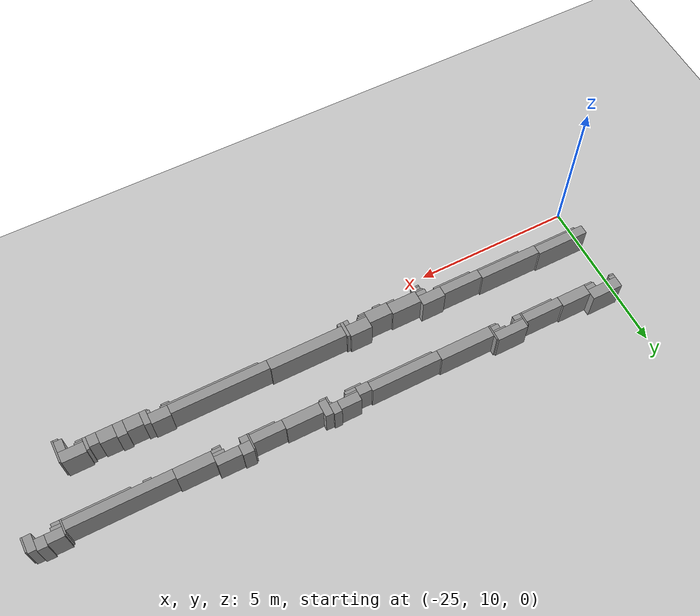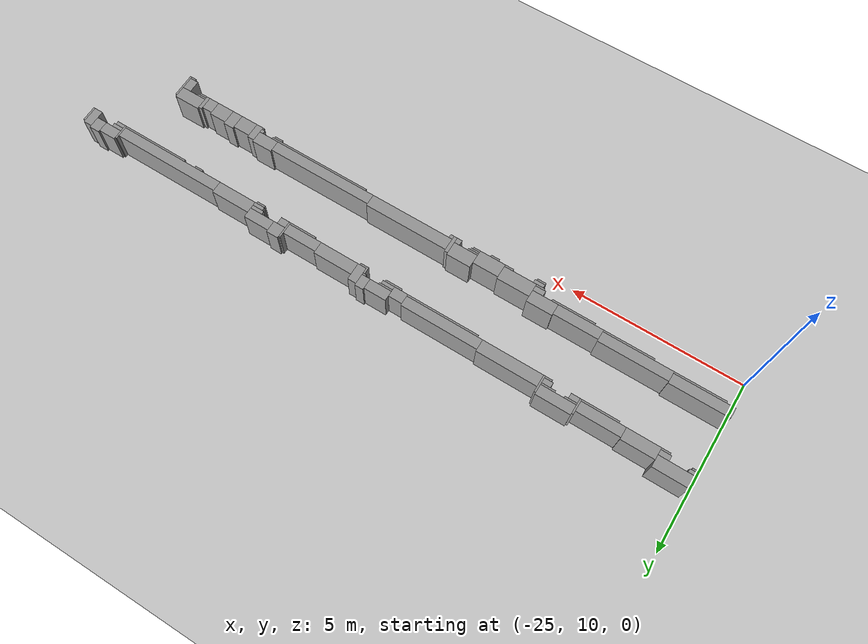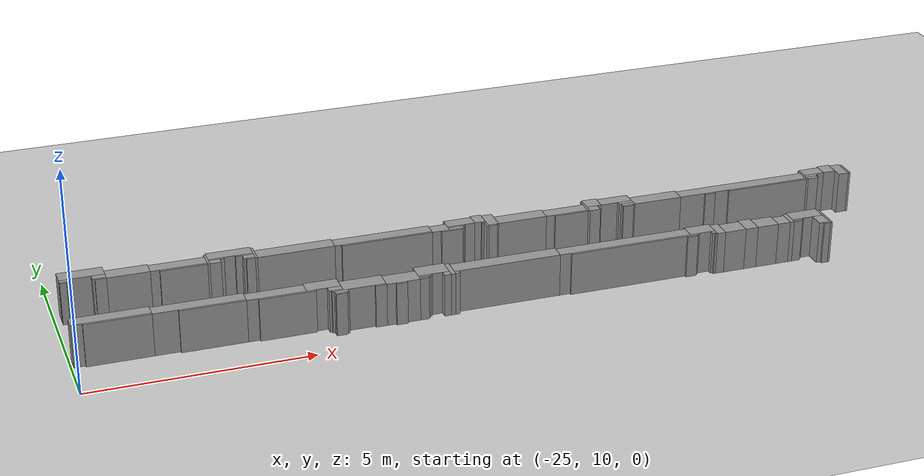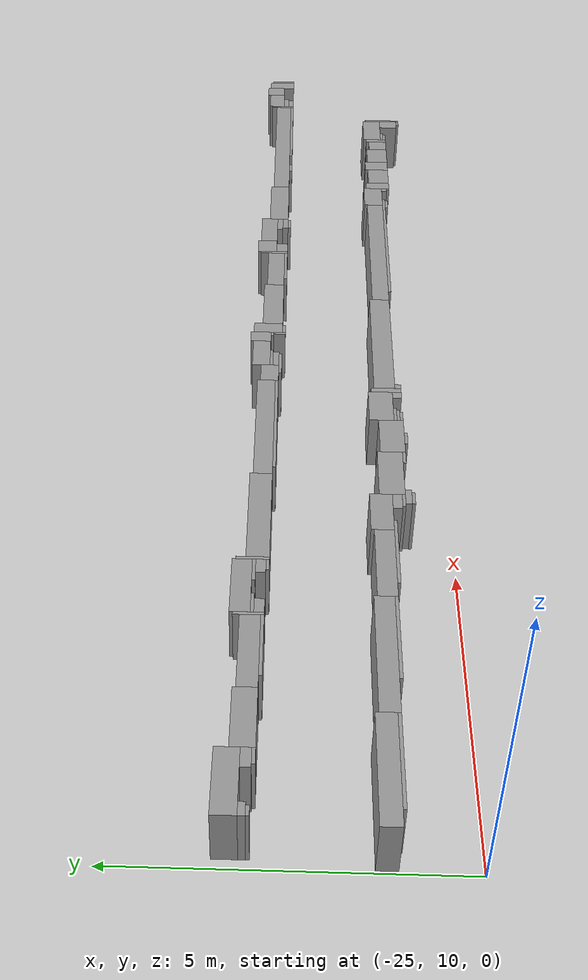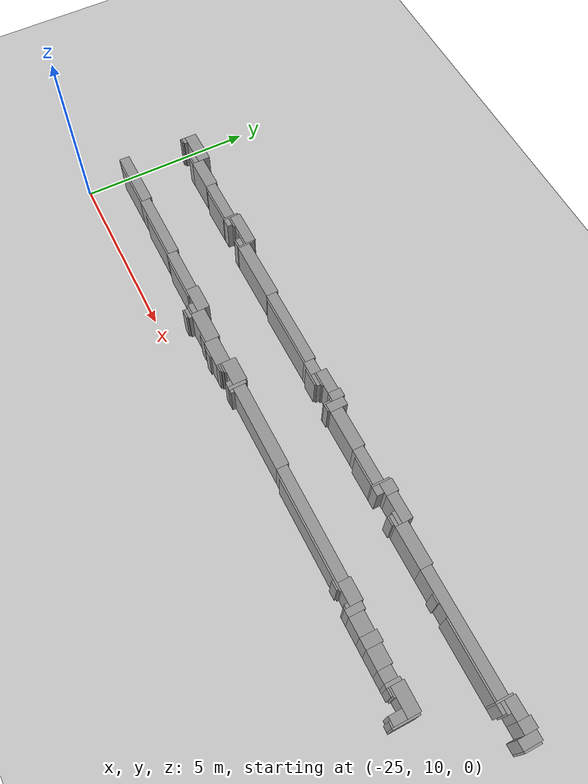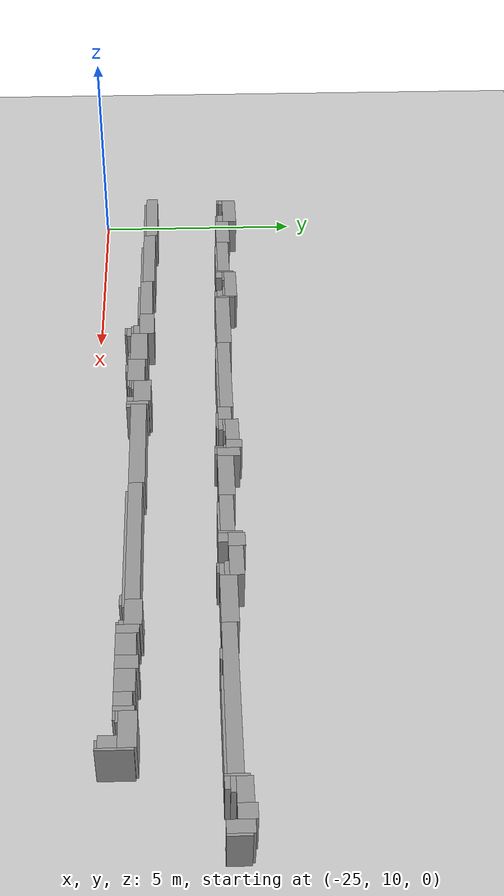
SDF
<sdf version="1.6">
 <world name="default">
  <include><uri>model://ground_plane</uri></include>
  <include><uri>model://sun</uri></include>
  <model name="wall_76">
   <static>1</static>
   <pose>-24.349999999999998 13.325000000000006 0.5 0 0 0</pose>
   <link name="link">
    <collision name="collision">
     <geometry><box><size>1.0 0.35000000000000003 1.0</size></box></geometry>
    </collision>
    <visual name="visual">
     <geometry><box><size>1.0 0.35000000000000003 1.0</size></box></geometry>
     <material>
      <script><uri>file://media/materials/scripts/gazebo.material</uri><name>Gazebo/Grey</name></script>
     </material>
    </visual>
   </link>
  </model>
  <model name="wall_81">
   <static>1</static>
   <pose>-21.099999999999998 13.250000000000004 0.5 0 0 0</pose>
   <link name="link">
    <collision name="collision">
     <geometry><box><size>1.0 0.30000000000000004 1.0</size></box></geometry>
    </collision>
    <visual name="visual">
     <geometry><box><size>1.0 0.30000000000000004 1.0</size></box></geometry>
     <material>
      <script><uri>file://media/materials/scripts/gazebo.material</uri><name>Gazebo/Grey</name></script>
     </material>
    </visual>
   </link>
  </model>
  <model name="wall_87">
   <static>1</static>
   <pose>-21.624999999999996 13.125000000000004 0.5 0 0 0</pose>
   <link name="link">
    <collision name="collision"><geometry><box><size>0.05 0.45 1.0</size></box></geometry></collision>
    <visual name="visual">
     <geometry><box><size>0.05 0.45 1.0</size></box></geometry>
     <material>
      <script><uri>file://media/materials/scripts/gazebo.material</uri><name>Gazebo/Grey</name></script>
     </material>
    </visual>
   </link>
  </model>
  <model name="wall_88">
   <static>1</static>
   <pose>-20.574999999999996 13.100000000000005 0.5 0 0 0</pose>
   <link name="link">
    <collision name="collision"><geometry><box><size>0.05 0.5 1.0</size></box></geometry></collision>
    <visual name="visual">
     <geometry><box><size>0.05 0.5 1.0</size></box></geometry>
     <material>
      <script><uri>file://media/materials/scripts/gazebo.material</uri><name>Gazebo/Grey</name></script>
     </material>
    </visual>
   </link>
  </model>
  <model name="wall_90">
   <static>1</static>
   <pose>-23.374999999999996 13.125000000000004 0.5 0 0 0</pose>
   <link name="link">
    <collision name="collision">
     <geometry><box><size>0.9500000000000001 0.35000000000000003 1.0</size></box></geometry>
    </collision>
    <visual name="visual">
     <geometry><box><size>0.9500000000000001 0.35000000000000003 1.0</size></box></geometry>
     <material>
      <script><uri>file://media/materials/scripts/gazebo.material</uri><name>Gazebo/Grey</name></script>
     </material>
    </visual>
   </link>
  </model>
  <model name="wall_91">
   <static>1</static>
   <pose>-15.374999999999996 13.125000000000004 0.5 0 0 0</pose>
   <link name="link">
    <collision name="collision">
     <geometry><box><size>0.25 0.35000000000000003 1.0</size></box></geometry>
    </collision>
    <visual name="visual">
     <geometry><box><size>0.25 0.35000000000000003 1.0</size></box></geometry>
     <material>
      <script><uri>file://media/materials/scripts/gazebo.material</uri><name>Gazebo/Grey</name></script>
     </material>
    </visual>
   </link>
  </model>
  <model name="wall_93">
   <static>1</static>
   <pose>-22.275 13.100000000000005 0.5 0 0 0</pose>
   <link name="link">
    <collision name="collision">
     <geometry><box><size>1.25 0.30000000000000004 1.0</size></box></geometry>
    </collision>
    <visual name="visual">
     <geometry><box><size>1.25 0.30000000000000004 1.0</size></box></geometry>
     <material>
      <script><uri>file://media/materials/scripts/gazebo.material</uri><name>Gazebo/Grey</name></script>
     </material>
    </visual>
   </link>
  </model>
  <model name="wall_94">
   <static>1</static>
   <pose>-15.824999999999996 13.100000000000005 0.5 0 0 0</pose>
   <link name="link">
    <collision name="collision">
     <geometry><box><size>0.65 0.30000000000000004 1.0</size></box></geometry>
    </collision>
    <visual name="visual">
     <geometry><box><size>0.65 0.30000000000000004 1.0</size></box></geometry>
     <material>
      <script><uri>file://media/materials/scripts/gazebo.material</uri><name>Gazebo/Grey</name></script>
     </material>
    </visual>
   </link>
  </model>
  <model name="wall_95">
   <static>1</static>
   <pose>-15.124999999999996 13.000000000000004 0.5 0 0 0</pose>
   <link name="link">
    <collision name="collision"><geometry><box><size>0.25 0.5 1.0</size></box></geometry></collision>
    <visual name="visual">
     <geometry><box><size>0.25 0.5 1.0</size></box></geometry>
     <material>
      <script><uri>file://media/materials/scripts/gazebo.material</uri><name>Gazebo/Grey</name></script>
     </material>
    </visual>
   </link>
  </model>
  <model name="wall_96">
   <static>1</static>
   <pose>-12.624999999999996 13.075000000000006 0.5 0 0 0</pose>
   <link name="link">
    <collision name="collision">
     <geometry><box><size>0.35000000000000003 0.35000000000000003 1.0</size></box></geometry>
    </collision>
    <visual name="visual">
     <geometry><box><size>0.35000000000000003 0.35000000000000003 1.0</size></box></geometry>
     <material>
      <script><uri>file://media/materials/scripts/gazebo.material</uri><name>Gazebo/Grey</name></script>
     </material>
    </visual>
   </link>
  </model>
  <model name="wall_98">
   <static>1</static>
   <pose>-19.674999999999997 13.025000000000002 0.5 0 0 0</pose>
   <link name="link">
    <collision name="collision">
     <geometry><box><size>1.75 0.35000000000000003 1.0</size></box></geometry>
    </collision>
    <visual name="visual">
     <geometry><box><size>1.75 0.35000000000000003 1.0</size></box></geometry>
     <material>
      <script><uri>file://media/materials/scripts/gazebo.material</uri><name>Gazebo/Grey</name></script>
     </material>
    </visual>
   </link>
  </model>
  <model name="wall_99">
   <static>1</static>
   <pose>-12.824999999999996 12.950000000000006 0.5 0 0 0</pose>
   <link name="link">
    <collision name="collision"><geometry><box><size>0.05 0.5 1.0</size></box></geometry></collision>
    <visual name="visual">
     <geometry><box><size>0.05 0.5 1.0</size></box></geometry>
     <material>
      <script><uri>file://media/materials/scripts/gazebo.material</uri><name>Gazebo/Grey</name></script>
     </material>
    </visual>
   </link>
  </model>
  <model name="wall_100">
   <static>1</static>
   <pose>-12.074999999999996 13.05 0.5 0 0 0</pose>
   <link name="link">
    <collision name="collision">
     <geometry><box><size>0.75 0.30000000000000004 1.0</size></box></geometry>
    </collision>
    <visual name="visual">
     <geometry><box><size>0.75 0.30000000000000004 1.0</size></box></geometry>
     <material>
      <script><uri>file://media/materials/scripts/gazebo.material</uri><name>Gazebo/Grey</name></script>
     </material>
    </visual>
   </link>
  </model>
  <model name="wall_101">
   <static>1</static>
   <pose>-6.649999999999999 13.025000000000002 0.5 0 0 0</pose>
   <link name="link">
    <collision name="collision">
     <geometry><box><size>0.30000000000000004 0.35000000000000003 1.0</size></box></geometry>
    </collision>
    <visual name="visual">
     <geometry><box><size>0.30000000000000004 0.35000000000000003 1.0</size></box></geometry>
     <material>
      <script><uri>file://media/materials/scripts/gazebo.material</uri><name>Gazebo/Grey</name></script>
     </material>
    </visual>
   </link>
  </model>
  <model name="wall_103">
   <static>1</static>
   <pose>-24.749999999999996 13.100000000000005 0.5 0 0 0</pose>
   <link name="link">
    <collision name="collision"><geometry><box><size>0.2 0.1 1.0</size></box></geometry></collision>
    <visual name="visual">
     <geometry><box><size>0.2 0.1 1.0</size></box></geometry>
     <material>
      <script><uri>file://media/materials/scripts/gazebo.material</uri><name>Gazebo/Grey</name></script>
     </material>
    </visual>
   </link>
  </model>
  <model name="wall_104">
   <static>1</static>
   <pose>-23.999999999999996 13.075000000000006 0.5 0 0 0</pose>
   <link name="link">
    <collision name="collision">
     <geometry><box><size>0.30000000000000004 0.15000000000000002 1.0</size></box></geometry>
    </collision>
    <visual name="visual">
     <geometry><box><size>0.30000000000000004 0.15000000000000002 1.0</size></box></geometry>
     <material>
      <script><uri>file://media/materials/scripts/gazebo.material</uri><name>Gazebo/Grey</name></script>
     </material>
    </visual>
   </link>
  </model>
  <model name="wall_105">
   <static>1</static>
   <pose>-17.674999999999997 13.000000000000004 0.5 0 0 0</pose>
   <link name="link">
    <collision name="collision">
     <geometry><box><size>2.25 0.30000000000000004 1.0</size></box></geometry>
    </collision>
    <visual name="visual">
     <geometry><box><size>2.25 0.30000000000000004 1.0</size></box></geometry>
     <material>
      <script><uri>file://media/materials/scripts/gazebo.material</uri><name>Gazebo/Grey</name></script>
     </material>
    </visual>
   </link>
  </model>
  <model name="wall_106">
   <static>1</static>
   <pose>-7.049999999999997 13.000000000000004 0.5 0 0 0</pose>
   <link name="link">
    <collision name="collision">
     <geometry><box><size>0.5 0.30000000000000004 1.0</size></box></geometry>
    </collision>
    <visual name="visual">
     <geometry><box><size>0.5 0.30000000000000004 1.0</size></box></geometry>
     <material>
      <script><uri>file://media/materials/scripts/gazebo.material</uri><name>Gazebo/Grey</name></script>
     </material>
    </visual>
   </link>
  </model>
  <model name="wall_107">
   <static>1</static>
   <pose>-6.375 12.900000000000002 0.5 0 0 0</pose>
   <link name="link">
    <collision name="collision"><geometry><box><size>0.25 0.5 1.0</size></box></geometry></collision>
    <visual name="visual">
     <geometry><box><size>0.25 0.5 1.0</size></box></geometry>
     <material>
      <script><uri>file://media/materials/scripts/gazebo.material</uri><name>Gazebo/Grey</name></script>
     </material>
    </visual>
   </link>
  </model>
  <model name="wall_110">
   <static>1</static>
   <pose>-21.424999999999997 13.075000000000006 0.5 0 0 0</pose>
   <link name="link">
    <collision name="collision">
     <geometry><box><size>0.35000000000000003 0.05 1.0</size></box></geometry>
    </collision>
    <visual name="visual">
     <geometry><box><size>0.35000000000000003 0.05 1.0</size></box></geometry>
     <material>
      <script><uri>file://media/materials/scripts/gazebo.material</uri><name>Gazebo/Grey</name></script>
     </material>
    </visual>
   </link>
  </model>
  <model name="wall_111">
   <static>1</static>
   <pose>-20.799999999999997 13.075000000000006 0.5 0 0 0</pose>
   <link name="link">
    <collision name="collision"><geometry><box><size>0.4 0.05 1.0</size></box></geometry></collision>
    <visual name="visual">
     <geometry><box><size>0.4 0.05 1.0</size></box></geometry>
     <material>
      <script><uri>file://media/materials/scripts/gazebo.material</uri><name>Gazebo/Grey</name></script>
     </material>
    </visual>
   </link>
  </model>
  <model name="wall_112">
   <static>1</static>
   <pose>-16.349999999999998 12.950000000000006 0.5 0 0 0</pose>
   <link name="link">
    <collision name="collision">
     <geometry><box><size>0.4 0.30000000000000004 1.0</size></box></geometry>
    </collision>
    <visual name="visual">
     <geometry><box><size>0.4 0.30000000000000004 1.0</size></box></geometry>
     <material>
      <script><uri>file://media/materials/scripts/gazebo.material</uri><name>Gazebo/Grey</name></script>
     </material>
    </visual>
   </link>
  </model>
  <model name="wall_113">
   <static>1</static>
   <pose>-14.424999999999997 12.925 0.5 0 0 0</pose>
   <link name="link">
    <collision name="collision">
     <geometry><box><size>1.1500000000000001 0.35000000000000003 1.0</size></box></geometry>
    </collision>
    <visual name="visual">
     <geometry><box><size>1.1500000000000001 0.35000000000000003 1.0</size></box></geometry>
     <material>
      <script><uri>file://media/materials/scripts/gazebo.material</uri><name>Gazebo/Grey</name></script>
     </material>
    </visual>
   </link>
  </model>
  <model name="wall_114">
   <static>1</static>
   <pose>-7.324999999999996 12.875000000000004 0.5 0 0 0</pose>
   <link name="link">
    <collision name="collision"><geometry><box><size>0.05 0.45 1.0</size></box></geometry></collision>
    <visual name="visual">
     <geometry><box><size>0.05 0.45 1.0</size></box></geometry>
     <material>
      <script><uri>file://media/materials/scripts/gazebo.material</uri><name>Gazebo/Grey</name></script>
     </material>
    </visual>
   </link>
  </model>
  <model name="wall_115">
   <static>1</static>
   <pose>-6.224999999999994 12.875000000000004 0.5 0 0 0</pose>
   <link name="link">
    <collision name="collision"><geometry><box><size>0.05 0.45 1.0</size></box></geometry></collision>
    <visual name="visual">
     <geometry><box><size>0.05 0.45 1.0</size></box></geometry>
     <material>
      <script><uri>file://media/materials/scripts/gazebo.material</uri><name>Gazebo/Grey</name></script>
     </material>
    </visual>
   </link>
  </model>
  <model name="wall_117">
   <static>1</static>
   <pose>-24.775 13.025000000000002 0.5 0 0 0</pose>
   <link name="link">
    <collision name="collision">
     <geometry><box><size>0.15000000000000002 0.05 1.0</size></box></geometry>
    </collision>
    <visual name="visual">
     <geometry><box><size>0.15000000000000002 0.05 1.0</size></box></geometry>
     <material>
      <script><uri>file://media/materials/scripts/gazebo.material</uri><name>Gazebo/Grey</name></script>
     </material>
    </visual>
   </link>
  </model>
  <model name="wall_118">
   <static>1</static>
   <pose>-21.474999999999998 12.975000000000005 0.5 0 0 0</pose>
   <link name="link">
    <collision name="collision">
     <geometry><box><size>0.25 0.15000000000000002 1.0</size></box></geometry>
    </collision>
    <visual name="visual">
     <geometry><box><size>0.25 0.15000000000000002 1.0</size></box></geometry>
     <material>
      <script><uri>file://media/materials/scripts/gazebo.material</uri><name>Gazebo/Grey</name></script>
     </material>
    </visual>
   </link>
  </model>
  <model name="wall_119">
   <static>1</static>
   <pose>-20.724999999999998 12.975000000000005 0.5 0 0 0</pose>
   <link name="link">
    <collision name="collision">
     <geometry><box><size>0.25 0.15000000000000002 1.0</size></box></geometry>
    </collision>
    <visual name="visual">
     <geometry><box><size>0.25 0.15000000000000002 1.0</size></box></geometry>
     <material>
      <script><uri>file://media/materials/scripts/gazebo.material</uri><name>Gazebo/Grey</name></script>
     </material>
    </visual>
   </link>
  </model>
  <model name="wall_120">
   <static>1</static>
   <pose>-13.349999999999998 12.900000000000002 0.5 0 0 0</pose>
   <link name="link">
    <collision name="collision">
     <geometry><box><size>1.0 0.30000000000000004 1.0</size></box></geometry>
    </collision>
    <visual name="visual">
     <geometry><box><size>1.0 0.30000000000000004 1.0</size></box></geometry>
     <material>
      <script><uri>file://media/materials/scripts/gazebo.material</uri><name>Gazebo/Grey</name></script>
     </material>
    </visual>
   </link>
  </model>
  <model name="wall_121">
   <static>1</static>
   <pose>-11.125 12.875000000000004 0.5 0 0 0</pose>
   <link name="link">
    <collision name="collision">
     <geometry><box><size>1.1500000000000001 0.35000000000000003 1.0</size></box></geometry>
    </collision>
    <visual name="visual">
     <geometry><box><size>1.1500000000000001 0.35000000000000003 1.0</size></box></geometry>
     <material>
      <script><uri>file://media/materials/scripts/gazebo.material</uri><name>Gazebo/Grey</name></script>
     </material>
    </visual>
   </link>
  </model>
  <model name="wall_123">
   <static>1</static>
   <pose>-23.974999999999998 12.975000000000005 0.5 0 0 0</pose>
   <link name="link">
    <collision name="collision"><geometry><box><size>0.25 0.05 1.0</size></box></geometry></collision>
    <visual name="visual">
     <geometry><box><size>0.25 0.05 1.0</size></box></geometry>
     <material>
      <script><uri>file://media/materials/scripts/gazebo.material</uri><name>Gazebo/Grey</name></script>
     </material>
    </visual>
   </link>
  </model>
  <model name="wall_124">
   <static>1</static>
   <pose>-8.949999999999996 12.850000000000005 0.5 0 0 0</pose>
   <link name="link">
    <collision name="collision">
     <geometry><box><size>3.2 0.30000000000000004 1.0</size></box></geometry>
    </collision>
    <visual name="visual">
     <geometry><box><size>3.2 0.30000000000000004 1.0</size></box></geometry>
     <material>
      <script><uri>file://media/materials/scripts/gazebo.material</uri><name>Gazebo/Grey</name></script>
     </material>
    </visual>
   </link>
  </model>
  <model name="wall_126">
   <static>1</static>
   <pose>-22.174999999999997 12.925 0.5 0 0 0</pose>
   <link name="link">
    <collision name="collision"><geometry><box><size>1.05 0.05 1.0</size></box></geometry></collision>
    <visual name="visual">
     <geometry><box><size>1.05 0.05 1.0</size></box></geometry>
     <material>
      <script><uri>file://media/materials/scripts/gazebo.material</uri><name>Gazebo/Grey</name></script>
     </material>
    </visual>
   </link>
  </model>
  <model name="wall_127">
   <static>1</static>
   <pose>-15.949999999999996 12.925 0.5 0 0 0</pose>
   <link name="link">
    <collision name="collision"><geometry><box><size>0.4 0.05 1.0</size></box></geometry></collision>
    <visual name="visual">
     <geometry><box><size>0.4 0.05 1.0</size></box></geometry>
     <material>
      <script><uri>file://media/materials/scripts/gazebo.material</uri><name>Gazebo/Grey</name></script>
     </material>
    </visual>
   </link>
  </model>
  <model name="wall_128">
   <static>1</static>
   <pose>-15.299999999999997 12.925 0.5 0 0 0</pose>
   <link name="link">
    <collision name="collision"><geometry><box><size>0.1 0.05 1.0</size></box></geometry></collision>
    <visual name="visual">
     <geometry><box><size>0.1 0.05 1.0</size></box></geometry>
     <material>
      <script><uri>file://media/materials/scripts/gazebo.material</uri><name>Gazebo/Grey</name></script>
     </material>
    </visual>
   </link>
  </model>
  <model name="wall_129">
   <static>1</static>
   <pose>-20.699999999999996 12.875000000000004 0.5 0 0 0</pose>
   <link name="link">
    <collision name="collision"><geometry><box><size>0.2 0.05 1.0</size></box></geometry></collision>
    <visual name="visual">
     <geometry><box><size>0.2 0.05 1.0</size></box></geometry>
     <material>
      <script><uri>file://media/materials/scripts/gazebo.material</uri><name>Gazebo/Grey</name></script>
     </material>
    </visual>
   </link>
  </model>
  <model name="wall_130">
   <static>1</static>
   <pose>-15.974999999999998 12.850000000000005 0.5 0 0 0</pose>
   <link name="link">
    <collision name="collision">
     <geometry><box><size>0.35000000000000003 0.1 1.0</size></box></geometry>
    </collision>
    <visual name="visual">
     <geometry><box><size>0.35000000000000003 0.1 1.0</size></box></geometry>
     <material>
      <script><uri>file://media/materials/scripts/gazebo.material</uri><name>Gazebo/Grey</name></script>
     </material>
    </visual>
   </link>
  </model>
  <model name="wall_131">
   <static>1</static>
   <pose>-15.274999999999999 12.8 0.5 0 0 0</pose>
   <link name="link">
    <collision name="collision"><geometry><box><size>0.05 0.2 1.0</size></box></geometry></collision>
    <visual name="visual">
     <geometry><box><size>0.05 0.2 1.0</size></box></geometry>
     <material>
      <script><uri>file://media/materials/scripts/gazebo.material</uri><name>Gazebo/Grey</name></script>
     </material>
    </visual>
   </link>
  </model>
  <model name="wall_132">
   <static>1</static>
   <pose>-12.674999999999997 12.8 0.5 0 0 0</pose>
   <link name="link">
    <collision name="collision"><geometry><box><size>0.25 0.2 1.0</size></box></geometry></collision>
    <visual name="visual">
     <geometry><box><size>0.25 0.2 1.0</size></box></geometry>
     <material>
      <script><uri>file://media/materials/scripts/gazebo.material</uri><name>Gazebo/Grey</name></script>
     </material>
    </visual>
   </link>
  </model>
  <model name="wall_133">
   <static>1</static>
   <pose>-11.875 12.850000000000005 0.5 0 0 0</pose>
   <link name="link">
    <collision name="collision">
     <geometry><box><size>0.35000000000000003 0.1 1.0</size></box></geometry>
    </collision>
    <visual name="visual">
     <geometry><box><size>0.35000000000000003 0.1 1.0</size></box></geometry>
     <material>
      <script><uri>file://media/materials/scripts/gazebo.material</uri><name>Gazebo/Grey</name></script>
     </material>
    </visual>
   </link>
  </model>
  <model name="wall_135">
   <static>1</static>
   <pose>-17.599999999999998 12.825000000000006 0.5 0 0 0</pose>
   <link name="link">
    <collision name="collision"><geometry><box><size>2.1 0.05 1.0</size></box></geometry></collision>
    <visual name="visual">
     <geometry><box><size>2.1 0.05 1.0</size></box></geometry>
     <material>
      <script><uri>file://media/materials/scripts/gazebo.material</uri><name>Gazebo/Grey</name></script>
     </material>
    </visual>
   </link>
  </model>
  <model name="wall_136">
   <static>1</static>
   <pose>-7.149999999999999 12.8 0.5 0 0 0</pose>
   <link name="link">
    <collision name="collision">
     <geometry><box><size>0.30000000000000004 0.1 1.0</size></box></geometry>
    </collision>
    <visual name="visual">
     <geometry><box><size>0.30000000000000004 0.1 1.0</size></box></geometry>
     <material>
      <script><uri>file://media/materials/scripts/gazebo.material</uri><name>Gazebo/Grey</name></script>
     </material>
    </visual>
   </link>
  </model>
  <model name="wall_137">
   <static>1</static>
   <pose>-16.099999999999998 12.775000000000002 0.5 0 0 0</pose>
   <link name="link">
    <collision name="collision"><geometry><box><size>0.5 0.05 1.0</size></box></geometry></collision>
    <visual name="visual">
     <geometry><box><size>0.5 0.05 1.0</size></box></geometry>
     <material>
      <script><uri>file://media/materials/scripts/gazebo.material</uri><name>Gazebo/Grey</name></script>
     </material>
    </visual>
   </link>
  </model>
  <model name="wall_138">
   <static>1</static>
   <pose>-11.849999999999994 12.750000000000004 0.5 0 0 0</pose>
   <link name="link">
    <collision name="collision">
     <geometry><box><size>0.30000000000000004 0.1 1.0</size></box></geometry>
    </collision>
    <visual name="visual">
     <geometry><box><size>0.30000000000000004 0.1 1.0</size></box></geometry>
     <material>
      <script><uri>file://media/materials/scripts/gazebo.material</uri><name>Gazebo/Grey</name></script>
     </material>
    </visual>
   </link>
  </model>
  <model name="wall_139">
   <static>1</static>
   <pose>-15.149999999999999 12.725000000000005 0.5 0 0 0</pose>
   <link name="link">
    <collision name="collision"><geometry><box><size>0.2 0.05 1.0</size></box></geometry></collision>
    <visual name="visual">
     <geometry><box><size>0.2 0.05 1.0</size></box></geometry>
     <material>
      <script><uri>file://media/materials/scripts/gazebo.material</uri><name>Gazebo/Grey</name></script>
     </material>
    </visual>
   </link>
  </model>
  <model name="wall_140">
   <static>1</static>
   <pose>-13.249999999999996 12.725000000000005 0.5 0 0 0</pose>
   <link name="link">
    <collision name="collision"><geometry><box><size>0.8 0.05 1.0</size></box></geometry></collision>
    <visual name="visual">
     <geometry><box><size>0.8 0.05 1.0</size></box></geometry>
     <material>
      <script><uri>file://media/materials/scripts/gazebo.material</uri><name>Gazebo/Grey</name></script>
     </material>
    </visual>
   </link>
  </model>
  <model name="wall_141">
   <static>1</static>
   <pose>-7.174999999999997 12.700000000000006 0.5 0 0 0</pose>
   <link name="link">
    <collision name="collision"><geometry><box><size>0.25 0.1 1.0</size></box></geometry></collision>
    <visual name="visual">
     <geometry><box><size>0.25 0.1 1.0</size></box></geometry>
     <material>
      <script><uri>file://media/materials/scripts/gazebo.material</uri><name>Gazebo/Grey</name></script>
     </material>
    </visual>
   </link>
  </model>
  <model name="wall_142">
   <static>1</static>
   <pose>-11.875 12.675 0.5 0 0 0</pose>
   <link name="link">
    <collision name="collision"><geometry><box><size>0.25 0.05 1.0</size></box></geometry></collision>
    <visual name="visual">
     <geometry><box><size>0.25 0.05 1.0</size></box></geometry>
     <material>
      <script><uri>file://media/materials/scripts/gazebo.material</uri><name>Gazebo/Grey</name></script>
     </material>
    </visual>
   </link>
  </model>
  <model name="wall_143">
   <static>1</static>
   <pose>-9.824999999999996 12.675 0.5 0 0 0</pose>
   <link name="link">
    <collision name="collision"><geometry><box><size>0.25 0.05 1.0</size></box></geometry></collision>
    <visual name="visual">
     <geometry><box><size>0.25 0.05 1.0</size></box></geometry>
     <material>
      <script><uri>file://media/materials/scripts/gazebo.material</uri><name>Gazebo/Grey</name></script>
     </material>
    </visual>
   </link>
  </model>
  <model name="wall_144">
   <static>1</static>
   <pose>-8.349999999999994 12.675 0.5 0 0 0</pose>
   <link name="link">
    <collision name="collision"><geometry><box><size>2.0 0.05 1.0</size></box></geometry></collision>
    <visual name="visual">
     <geometry><box><size>2.0 0.05 1.0</size></box></geometry>
     <material>
      <script><uri>file://media/materials/scripts/gazebo.material</uri><name>Gazebo/Grey</name></script>
     </material>
    </visual>
   </link>
  </model>
  <model name="wall_166">
   <static>1</static>
   <pose>-24.099999999999998 11.250000000000004 0.5 0 0 0</pose>
   <link name="link">
    <collision name="collision">
     <geometry><box><size>1.7000000000000002 0.30000000000000004 1.0</size></box></geometry>
    </collision>
    <visual name="visual">
     <geometry><box><size>1.7000000000000002 0.30000000000000004 1.0</size></box></geometry>
     <material>
      <script><uri>file://media/materials/scripts/gazebo.material</uri><name>Gazebo/Grey</name></script>
     </material>
    </visual>
   </link>
  </model>
  <model name="wall_169">
   <static>1</static>
   <pose>-22.249999999999996 11.200000000000006 0.5 0 0 0</pose>
   <link name="link">
    <collision name="collision">
     <geometry><box><size>2.0 0.30000000000000004 1.0</size></box></geometry>
    </collision>
    <visual name="visual">
     <geometry><box><size>2.0 0.30000000000000004 1.0</size></box></geometry>
     <material>
      <script><uri>file://media/materials/scripts/gazebo.material</uri><name>Gazebo/Grey</name></script>
     </material>
    </visual>
   </link>
  </model>
  <model name="wall_170">
   <static>1</static>
   <pose>-19.574999999999996 11.175 0.5 0 0 0</pose>
   <link name="link">
    <collision name="collision">
     <geometry><box><size>0.75 0.35000000000000003 1.0</size></box></geometry>
    </collision>
    <visual name="visual">
     <geometry><box><size>0.75 0.35000000000000003 1.0</size></box></geometry>
     <material>
      <script><uri>file://media/materials/scripts/gazebo.material</uri><name>Gazebo/Grey</name></script>
     </material>
    </visual>
   </link>
  </model>
  <model name="wall_172">
   <static>1</static>
   <pose>-20.599999999999998 11.150000000000002 0.5 0 0 0</pose>
   <link name="link">
    <collision name="collision">
     <geometry><box><size>1.3 0.30000000000000004 1.0</size></box></geometry>
    </collision>
    <visual name="visual">
     <geometry><box><size>1.3 0.30000000000000004 1.0</size></box></geometry>
     <material>
      <script><uri>file://media/materials/scripts/gazebo.material</uri><name>Gazebo/Grey</name></script>
     </material>
    </visual>
   </link>
  </model>
  <model name="wall_173">
   <static>1</static>
   <pose>-17.15 11.100000000000005 0.5 0 0 0</pose>
   <link name="link">
    <collision name="collision">
     <geometry><box><size>0.7000000000000001 0.4 1.0</size></box></geometry>
    </collision>
    <visual name="visual">
     <geometry><box><size>0.7000000000000001 0.4 1.0</size></box></geometry>
     <material>
      <script><uri>file://media/materials/scripts/gazebo.material</uri><name>Gazebo/Grey</name></script>
     </material>
    </visual>
   </link>
  </model>
  <model name="wall_175">
   <static>1</static>
   <pose>-16.749999999999996 11.000000000000004 0.5 0 0 0</pose>
   <link name="link">
    <collision name="collision"><geometry><box><size>0.1 0.5 1.0</size></box></geometry></collision>
    <visual name="visual">
     <geometry><box><size>0.1 0.5 1.0</size></box></geometry>
     <material>
      <script><uri>file://media/materials/scripts/gazebo.material</uri><name>Gazebo/Grey</name></script>
     </material>
    </visual>
   </link>
  </model>
  <model name="wall_176">
   <static>1</static>
   <pose>-18.724999999999998 11.000000000000004 0.5 0 0 0</pose>
   <link name="link">
    <collision name="collision">
     <geometry><box><size>0.9500000000000001 0.4 1.0</size></box></geometry>
    </collision>
    <visual name="visual">
     <geometry><box><size>0.9500000000000001 0.4 1.0</size></box></geometry>
     <material>
      <script><uri>file://media/materials/scripts/gazebo.material</uri><name>Gazebo/Grey</name></script>
     </material>
    </visual>
   </link>
  </model>
  <model name="wall_177">
   <static>1</static>
   <pose>-15.474999999999998 11.025000000000002 0.5 0 0 0</pose>
   <link name="link">
    <collision name="collision">
     <geometry><box><size>2.45 0.35000000000000003 1.0</size></box></geometry>
    </collision>
    <visual name="visual">
     <geometry><box><size>2.45 0.35000000000000003 1.0</size></box></geometry>
     <material>
      <script><uri>file://media/materials/scripts/gazebo.material</uri><name>Gazebo/Grey</name></script>
     </material>
    </visual>
   </link>
  </model>
  <model name="wall_178">
   <static>1</static>
   <pose>-10.849999999999994 11.025000000000002 0.5 0 0 0</pose>
   <link name="link">
    <collision name="collision">
     <geometry><box><size>0.6000000000000001 0.35000000000000003 1.0</size></box></geometry>
    </collision>
    <visual name="visual">
     <geometry><box><size>0.6000000000000001 0.35000000000000003 1.0</size></box></geometry>
     <material>
      <script><uri>file://media/materials/scripts/gazebo.material</uri><name>Gazebo/Grey</name></script>
     </material>
    </visual>
   </link>
  </model>
  <model name="wall_179">
   <static>1</static>
   <pose>-17.874999999999996 10.95 0.5 0 0 0</pose>
   <link name="link">
    <collision name="collision"><geometry><box><size>0.75 0.4 1.0</size></box></geometry></collision>
    <visual name="visual">
     <geometry><box><size>0.75 0.4 1.0</size></box></geometry>
     <material>
      <script><uri>file://media/materials/scripts/gazebo.material</uri><name>Gazebo/Grey</name></script>
     </material>
    </visual>
   </link>
  </model>
  <model name="wall_180">
   <static>1</static>
   <pose>-12.699999999999996 11.000000000000004 0.5 0 0 0</pose>
   <link name="link">
    <collision name="collision">
     <geometry><box><size>3.1 0.30000000000000004 1.0</size></box></geometry>
    </collision>
    <visual name="visual">
     <geometry><box><size>3.1 0.30000000000000004 1.0</size></box></geometry>
     <material>
      <script><uri>file://media/materials/scripts/gazebo.material</uri><name>Gazebo/Grey</name></script>
     </material>
    </visual>
   </link>
  </model>
  <model name="wall_181">
   <static>1</static>
   <pose>-10.449999999999996 10.925 0.5 0 0 0</pose>
   <link name="link">
    <collision name="collision"><geometry><box><size>0.2 0.45 1.0</size></box></geometry></collision>
    <visual name="visual">
     <geometry><box><size>0.2 0.45 1.0</size></box></geometry>
     <material>
      <script><uri>file://media/materials/scripts/gazebo.material</uri><name>Gazebo/Grey</name></script>
     </material>
    </visual>
   </link>
  </model>
  <model name="wall_182">
   <static>1</static>
   <pose>-9.699999999999996 10.925 0.5 0 0 0</pose>
   <link name="link">
    <collision name="collision">
     <geometry><box><size>0.30000000000000004 0.45 1.0</size></box></geometry>
    </collision>
    <visual name="visual">
     <geometry><box><size>0.30000000000000004 0.45 1.0</size></box></geometry>
     <material>
      <script><uri>file://media/materials/scripts/gazebo.material</uri><name>Gazebo/Grey</name></script>
     </material>
    </visual>
   </link>
  </model>
  <model name="wall_183">
   <static>1</static>
   <pose>-8.274999999999999 10.975000000000005 0.5 0 0 0</pose>
   <link name="link">
    <collision name="collision">
     <geometry><box><size>0.75 0.35000000000000003 1.0</size></box></geometry>
    </collision>
    <visual name="visual">
     <geometry><box><size>0.75 0.35000000000000003 1.0</size></box></geometry>
     <material>
      <script><uri>file://media/materials/scripts/gazebo.material</uri><name>Gazebo/Grey</name></script>
     </material>
    </visual>
   </link>
  </model>
  <model name="wall_188">
   <static>1</static>
   <pose>-23.974999999999998 11.075 0.5 0 0 0</pose>
   <link name="link">
    <collision name="collision">
     <geometry><box><size>1.4500000000000002 0.05 1.0</size></box></geometry>
    </collision>
    <visual name="visual">
     <geometry><box><size>1.4500000000000002 0.05 1.0</size></box></geometry>
     <material>
      <script><uri>file://media/materials/scripts/gazebo.material</uri><name>Gazebo/Grey</name></script>
     </material>
    </visual>
   </link>
  </model>
  <model name="wall_189">
   <static>1</static>
   <pose>-10.099999999999994 10.900000000000002 0.5 0 0 0</pose>
   <link name="link">
    <collision name="collision"><geometry><box><size>0.5 0.4 1.0</size></box></geometry></collision>
    <visual name="visual">
     <geometry><box><size>0.5 0.4 1.0</size></box></geometry>
     <material>
      <script><uri>file://media/materials/scripts/gazebo.material</uri><name>Gazebo/Grey</name></script>
     </material>
    </visual>
   </link>
  </model>
  <model name="wall_190">
   <static>1</static>
   <pose>-9.299999999999997 10.900000000000002 0.5 0 0 0</pose>
   <link name="link">
    <collision name="collision"><geometry><box><size>0.5 0.4 1.0</size></box></geometry></collision>
    <visual name="visual">
     <geometry><box><size>0.5 0.4 1.0</size></box></geometry>
     <material>
      <script><uri>file://media/materials/scripts/gazebo.material</uri><name>Gazebo/Grey</name></script>
     </material>
    </visual>
   </link>
  </model>
  <model name="wall_191">
   <static>1</static>
   <pose>-8.699999999999996 10.900000000000002 0.5 0 0 0</pose>
   <link name="link">
    <collision name="collision"><geometry><box><size>0.1 0.4 1.0</size></box></geometry></collision>
    <visual name="visual">
     <geometry><box><size>0.1 0.4 1.0</size></box></geometry>
     <material>
      <script><uri>file://media/materials/scripts/gazebo.material</uri><name>Gazebo/Grey</name></script>
     </material>
    </visual>
   </link>
  </model>
  <model name="wall_192">
   <static>1</static>
   <pose>-7.875 10.750000000000004 0.5 0 0 0</pose>
   <link name="link">
    <collision name="collision">
     <geometry><box><size>0.05 0.7000000000000001 1.0</size></box></geometry>
    </collision>
    <visual name="visual">
     <geometry><box><size>0.05 0.7000000000000001 1.0</size></box></geometry>
     <material>
      <script><uri>file://media/materials/scripts/gazebo.material</uri><name>Gazebo/Grey</name></script>
     </material>
    </visual>
   </link>
  </model>
  <model name="wall_198">
   <static>1</static>
   <pose>-21.974999999999998 11.025000000000002 0.5 0 0 0</pose>
   <link name="link">
    <collision name="collision">
     <geometry><box><size>1.4500000000000002 0.05 1.0</size></box></geometry>
    </collision>
    <visual name="visual">
     <geometry><box><size>1.4500000000000002 0.05 1.0</size></box></geometry>
     <material>
      <script><uri>file://media/materials/scripts/gazebo.material</uri><name>Gazebo/Grey</name></script>
     </material>
    </visual>
   </link>
  </model>
  <model name="wall_199">
   <static>1</static>
   <pose>-8.899999999999999 10.875000000000004 0.5 0 0 0</pose>
   <link name="link">
    <collision name="collision">
     <geometry><box><size>0.30000000000000004 0.35000000000000003 1.0</size></box></geometry>
    </collision>
    <visual name="visual">
     <geometry><box><size>0.30000000000000004 0.35000000000000003 1.0</size></box></geometry>
     <material>
      <script><uri>file://media/materials/scripts/gazebo.material</uri><name>Gazebo/Grey</name></script>
     </material>
    </visual>
   </link>
  </model>
  <model name="wall_202">
   <static>1</static>
   <pose>-20.374999999999996 10.975000000000005 0.5 0 0 0</pose>
   <link name="link">
    <collision name="collision"><geometry><box><size>1.25 0.05 1.0</size></box></geometry></collision>
    <visual name="visual">
     <geometry><box><size>1.25 0.05 1.0</size></box></geometry>
     <material>
      <script><uri>file://media/materials/scripts/gazebo.material</uri><name>Gazebo/Grey</name></script>
     </material>
    </visual>
   </link>
  </model>
  <model name="wall_203">
   <static>1</static>
   <pose>-19.349999999999998 10.925 0.5 0 0 0</pose>
   <link name="link">
    <collision name="collision">
     <geometry><box><size>0.30000000000000004 0.15000000000000002 1.0</size></box></geometry>
    </collision>
    <visual name="visual">
     <geometry><box><size>0.30000000000000004 0.15000000000000002 1.0</size></box></geometry>
     <material>
      <script><uri>file://media/materials/scripts/gazebo.material</uri><name>Gazebo/Grey</name></script>
     </material>
    </visual>
   </link>
  </model>
  <model name="wall_207">
   <static>1</static>
   <pose>-17.349999999999998 10.875000000000004 0.5 0 0 0</pose>
   <link name="link">
    <collision name="collision">
     <geometry><box><size>0.30000000000000004 0.05 1.0</size></box></geometry>
    </collision>
    <visual name="visual">
     <geometry><box><size>0.30000000000000004 0.05 1.0</size></box></geometry>
     <material>
      <script><uri>file://media/materials/scripts/gazebo.material</uri><name>Gazebo/Grey</name></script>
     </material>
    </visual>
   </link>
  </model>
  <model name="wall_208">
   <static>1</static>
   <pose>-16.874999999999996 10.825 0.5 0 0 0</pose>
   <link name="link">
    <collision name="collision">
     <geometry><box><size>0.15000000000000002 0.15000000000000002 1.0</size></box></geometry>
    </collision>
    <visual name="visual">
     <geometry><box><size>0.15000000000000002 0.15000000000000002 1.0</size></box></geometry>
     <material>
      <script><uri>file://media/materials/scripts/gazebo.material</uri><name>Gazebo/Grey</name></script>
     </material>
    </visual>
   </link>
  </model>
  <model name="wall_209">
   <static>1</static>
   <pose>-19.324999999999996 10.825 0.5 0 0 0</pose>
   <link name="link">
    <collision name="collision"><geometry><box><size>0.25 0.05 1.0</size></box></geometry></collision>
    <visual name="visual">
     <geometry><box><size>0.25 0.05 1.0</size></box></geometry>
     <material>
      <script><uri>file://media/materials/scripts/gazebo.material</uri><name>Gazebo/Grey</name></script>
     </material>
    </visual>
   </link>
  </model>
  <model name="wall_210">
   <static>1</static>
   <pose>-17.374999999999996 10.825 0.5 0 0 0</pose>
   <link name="link">
    <collision name="collision"><geometry><box><size>0.25 0.05 1.0</size></box></geometry></collision>
    <visual name="visual">
     <geometry><box><size>0.25 0.05 1.0</size></box></geometry>
     <material>
      <script><uri>file://media/materials/scripts/gazebo.material</uri><name>Gazebo/Grey</name></script>
     </material>
    </visual>
   </link>
  </model>
  <model name="wall_211">
   <static>1</static>
   <pose>-16.65 10.8 0.5 0 0 0</pose>
   <link name="link">
    <collision name="collision"><geometry><box><size>0.1 0.1 1.0</size></box></geometry></collision>
    <visual name="visual">
     <geometry><box><size>0.1 0.1 1.0</size></box></geometry>
     <material>
      <script><uri>file://media/materials/scripts/gazebo.material</uri><name>Gazebo/Grey</name></script>
     </material>
    </visual>
   </link>
  </model>
  <model name="wall_212">
   <static>1</static>
   <pose>-12.474999999999998 10.825 0.5 0 0 0</pose>
   <link name="link">
    <collision name="collision">
     <geometry><box><size>3.0500000000000003 0.05 1.0</size></box></geometry>
    </collision>
    <visual name="visual">
     <geometry><box><size>3.0500000000000003 0.05 1.0</size></box></geometry>
     <material>
      <script><uri>file://media/materials/scripts/gazebo.material</uri><name>Gazebo/Grey</name></script>
     </material>
    </visual>
   </link>
  </model>
  <model name="wall_213">
   <static>1</static>
   <pose>-10.599999999999994 10.8 0.5 0 0 0</pose>
   <link name="link">
    <collision name="collision"><geometry><box><size>0.1 0.1 1.0</size></box></geometry></collision>
    <visual name="visual">
     <geometry><box><size>0.1 0.1 1.0</size></box></geometry>
     <material>
      <script><uri>file://media/materials/scripts/gazebo.material</uri><name>Gazebo/Grey</name></script>
     </material>
    </visual>
   </link>
  </model>
  <model name="wall_216">
   <static>1</static>
   <pose>-19.249999999999996 10.750000000000004 0.5 0 0 0</pose>
   <link name="link">
    <collision name="collision">
     <geometry><box><size>0.30000000000000004 0.1 1.0</size></box></geometry>
    </collision>
    <visual name="visual">
     <geometry><box><size>0.30000000000000004 0.1 1.0</size></box></geometry>
     <material>
      <script><uri>file://media/materials/scripts/gazebo.material</uri><name>Gazebo/Grey</name></script>
     </material>
    </visual>
   </link>
  </model>
  <model name="wall_217">
   <static>1</static>
   <pose>-18.374999999999996 10.775000000000002 0.5 0 0 0</pose>
   <link name="link">
    <collision name="collision"><geometry><box><size>0.25 0.05 1.0</size></box></geometry></collision>
    <visual name="visual">
     <geometry><box><size>0.25 0.05 1.0</size></box></geometry>
     <material>
      <script><uri>file://media/materials/scripts/gazebo.material</uri><name>Gazebo/Grey</name></script>
     </material>
    </visual>
   </link>
  </model>
  <model name="wall_218">
   <static>1</static>
   <pose>-17.4 10.775000000000002 0.5 0 0 0</pose>
   <link name="link">
    <collision name="collision"><geometry><box><size>0.2 0.05 1.0</size></box></geometry></collision>
    <visual name="visual">
     <geometry><box><size>0.2 0.05 1.0</size></box></geometry>
     <material>
      <script><uri>file://media/materials/scripts/gazebo.material</uri><name>Gazebo/Grey</name></script>
     </material>
    </visual>
   </link>
  </model>
  <model name="wall_219">
   <static>1</static>
   <pose>-11.125 10.775000000000002 0.5 0 0 0</pose>
   <link name="link">
    <collision name="collision"><geometry><box><size>0.25 0.05 1.0</size></box></geometry></collision>
    <visual name="visual">
     <geometry><box><size>0.25 0.05 1.0</size></box></geometry>
     <material>
      <script><uri>file://media/materials/scripts/gazebo.material</uri><name>Gazebo/Grey</name></script>
     </material>
    </visual>
   </link>
  </model>
  <model name="wall_220">
   <static>1</static>
   <pose>-8.524999999999999 10.775000000000002 0.5 0 0 0</pose>
   <link name="link">
    <collision name="collision"><geometry><box><size>0.25 0.05 1.0</size></box></geometry></collision>
    <visual name="visual">
     <geometry><box><size>0.25 0.05 1.0</size></box></geometry>
     <material>
      <script><uri>file://media/materials/scripts/gazebo.material</uri><name>Gazebo/Grey</name></script>
     </material>
    </visual>
   </link>
  </model>
  <model name="wall_221">
   <static>1</static>
   <pose>-8.024999999999999 10.625000000000004 0.5 0 0 0</pose>
   <link name="link">
    <collision name="collision">
     <geometry><box><size>0.25 0.35000000000000003 1.0</size></box></geometry>
    </collision>
    <visual name="visual">
     <geometry><box><size>0.25 0.35000000000000003 1.0</size></box></geometry>
     <material>
      <script><uri>file://media/materials/scripts/gazebo.material</uri><name>Gazebo/Grey</name></script>
     </material>
    </visual>
   </link>
  </model>
  <model name="wall_222">
   <static>1</static>
   <pose>-17.924999999999997 10.725000000000005 0.5 0 0 0</pose>
   <link name="link">
    <collision name="collision"><geometry><box><size>0.25 0.05 1.0</size></box></geometry></collision>
    <visual name="visual">
     <geometry><box><size>0.25 0.05 1.0</size></box></geometry>
     <material>
      <script><uri>file://media/materials/scripts/gazebo.material</uri><name>Gazebo/Grey</name></script>
     </material>
    </visual>
   </link>
  </model>
  <model name="wall_223">
   <static>1</static>
   <pose>-10.574999999999996 10.725000000000005 0.5 0 0 0</pose>
   <link name="link">
    <collision name="collision"><geometry><box><size>0.05 0.05 1.0</size></box></geometry></collision>
    <visual name="visual">
     <geometry><box><size>0.05 0.05 1.0</size></box></geometry>
     <material>
      <script><uri>file://media/materials/scripts/gazebo.material</uri><name>Gazebo/Grey</name></script>
     </material>
    </visual>
   </link>
  </model>
  <model name="wall_224">
   <static>1</static>
   <pose>-8.549999999999997 10.725000000000005 0.5 0 0 0</pose>
   <link name="link">
    <collision name="collision"><geometry><box><size>0.2 0.05 1.0</size></box></geometry></collision>
    <visual name="visual">
     <geometry><box><size>0.2 0.05 1.0</size></box></geometry>
     <material>
      <script><uri>file://media/materials/scripts/gazebo.material</uri><name>Gazebo/Grey</name></script>
     </material>
    </visual>
   </link>
  </model>
  <model name="wall_226">
   <static>1</static>
   <pose>-19.275 10.675 0.5 0 0 0</pose>
   <link name="link">
    <collision name="collision"><geometry><box><size>0.25 0.05 1.0</size></box></geometry></collision>
    <visual name="visual">
     <geometry><box><size>0.25 0.05 1.0</size></box></geometry>
     <material>
      <script><uri>file://media/materials/scripts/gazebo.material</uri><name>Gazebo/Grey</name></script>
     </material>
    </visual>
   </link>
  </model>
  <model name="wall_233">
   <static>1</static>
   <pose>-7.974999999999994 10.425 0.5 0 0 0</pose>
   <link name="link">
    <collision name="collision">
     <geometry><box><size>0.15000000000000002 0.05 1.0</size></box></geometry>
    </collision>
    <visual name="visual">
     <geometry><box><size>0.15000000000000002 0.05 1.0</size></box></geometry>
     <material>
      <script><uri>file://media/materials/scripts/gazebo.material</uri><name>Gazebo/Grey</name></script>
     </material>
    </visual>
   </link>
  </model>
 </world>
</sdf>
